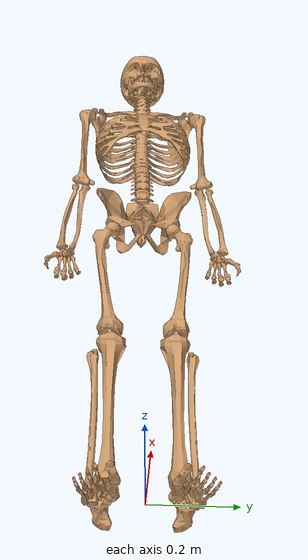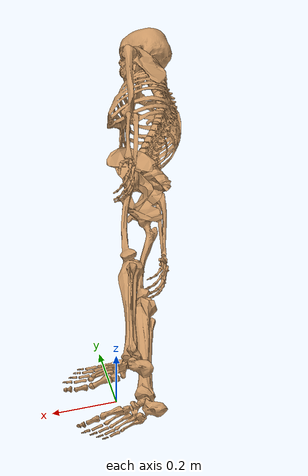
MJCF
<mujoco model="skeleton_restructured">
  <compiler angle="radian" meshdir="meshes" balanceinertia="true" autolimits="true"/>

  <option integrator="implicitfast"/>

  <default>
    <default class="skeleton">
      <material specular="0.5" shininess="0.25"/>
      <joint armature="0.01" damping="0.1" axis="0 0 1" limited="true" stiffness="0.0"/>
      <general dyntype="none" biastype="affine"/>

      <default class="visual">
        <geom type="mesh" contype="0" conaffinity="0" group="2" rgba="0.8 0.6 0.4 1" margin="0.001" condim="1"/>
      </default>
      <default class="collision">
        <geom type="mesh" group="3" margin="0.001" condim="1"/>
      </default>
    </default>
  </default>

  <asset>
    <material class="skeleton" name="bone_color" rgba="0.9 0.85 0.8 1"/>
    <material class="skeleton" name="skin_color" rgba="0.8 0.6 0.4 1"/>

    <!-- All skeleton meshes with original scale values -->
    <mesh name="sacrum" file="sacrum.stl" scale="1.02105 1.02105 1.02105"/>
    <mesh name="pelvis" file="pelvis.stl" scale="1.02105 1.02105 1.02105"/>
    <mesh name="l_pelvis" file="l_pelvis.stl" scale="1.02105 1.02105 1.02105"/>
    <mesh name="femur_r" file="femur_r.stl" scale="0.908907 0.908907 0.908907"/>
    <mesh name="tibia_r" file="tibia_r.stl" scale="1.11668 1.11668 1.11668"/>
    <mesh name="fibula_r" file="fibula_r.stl" scale="1.11668 1.11668 1.11668"/>
    <mesh name="talus_rv" file="talus_rv.stl" scale="1.11668 1.11668 1.11668"/>
    <mesh name="foot" file="foot.stl" scale="1.06552 1.06552 1.06552"/>
    <mesh name="bofoot" file="bofoot.stl" scale="1.06552 1.06552 1.06552"/>
    <mesh name="femur_l" file="femur_l.stl" scale="0.908907 0.908907 0.908907"/>
    <mesh name="tibia_l" file="tibia_l.stl" scale="1.11668 1.11668 1.11668"/>
    <mesh name="fibula_l" file="fibula_l.stl" scale="1.11668 1.11668 1.11668"/>
    <mesh name="talus_lv" file="talus_lv.stl" scale="1.11668 1.11668 1.11668"/>
    <mesh name="l_foot" file="l_foot.stl" scale="1.06552 1.06552 1.06552"/>
    <mesh name="l_bofoot" file="l_bofoot.stl" scale="1.06552 1.06552 1.06552"/>
    <mesh name="hat_spine" file="hat_spine.stl" scale="1.07736 1.07736 1.07736"/>
    <mesh name="hat_jaw" file="hat_jaw.stl" scale="1.07736 1.07736 1.07736"/>
    <mesh name="hat_skull" file="hat_skull.stl" scale="1.07736 1.07736 1.07736"/>
    <mesh name="hat_ribs_scap" file="hat_ribs_scap.stl" scale="1.07736 1.07736 1.07736"/>
    <mesh name="humerus_rv" file="humerus_rv.stl" scale="1.17477 1.17477 1.17477"/>
    <mesh name="ulna_rv" file="ulna_rv.stl" scale="1.10827 1.10827 1.10827"/>
    <mesh name="radius_rv" file="radius_rv.stl" scale="1.10827 1.10827 1.10827"/>
    <mesh name="pisiform_rvs" file="pisiform_rvs.stl" scale="0.905691 0.905691 0.905691"/>
    <mesh name="lunate_rvs" file="lunate_rvs.stl" scale="0.905691 0.905691 0.905691"/>
    <mesh name="scaphoid_rvs" file="scaphoid_rvs.stl" scale="0.905691 0.905691 0.905691"/>
    <mesh name="triquetrum_rvs" file="triquetrum_rvs.stl" scale="0.905691 0.905691 0.905691"/>
    <mesh name="hamate_rvs" file="hamate_rvs.stl" scale="0.905691 0.905691 0.905691"/>
    <mesh name="capitate_rvs" file="capitate_rvs.stl" scale="0.905691 0.905691 0.905691"/>
    <mesh name="trapezoid_rvs" file="trapezoid_rvs.stl" scale="0.905691 0.905691 0.905691"/>
    <mesh name="trapezium_rvs" file="trapezium_rvs.stl" scale="0.905691 0.905691 0.905691"/>
    <mesh name="metacarpal2_rvs" file="metacarpal2_rvs.stl" scale="0.905691 0.905691 0.905691"/>
    <mesh name="index_proximal_rvs" file="index_proximal_rvs.stl" scale="0.905691 0.905691 0.905691"/>
    <mesh name="index_medial_rvs" file="index_medial_rvs.stl" scale="0.905691 0.905691 0.905691"/>
    <mesh name="index_distal_rvs" file="index_distal_rvs.stl" scale="0.905691 0.905691 0.905691"/>
    <mesh name="metacarpal3_rvs" file="metacarpal3_rvs.stl" scale="0.905691 0.905691 0.905691"/>
    <mesh name="middle_proximal_rvs" file="middle_proximal_rvs.stl" scale="0.905691 0.905691 0.905691"/>
    <mesh name="middle_medial_rvs" file="middle_medial_rvs.stl" scale="0.905691 0.905691 0.905691"/>
    <mesh name="middle_distal_rvs" file="middle_distal_rvs.stl" scale="0.905691 0.905691 0.905691"/>
    <mesh name="metacarpal4_rvs" file="metacarpal4_rvs.stl" scale="0.905691 0.905691 0.905691"/>
    <mesh name="ring_proximal_rvs" file="ring_proximal_rvs.stl" scale="0.905691 0.905691 0.905691"/>
    <mesh name="ring_medial_rvs" file="ring_medial_rvs.stl" scale="0.905691 0.905691 0.905691"/>
    <mesh name="ring_distal_rvs" file="ring_distal_rvs.stl" scale="0.905691 0.905691 0.905691"/>
    <mesh name="metacarpal5_rvs" file="metacarpal5_rvs.stl" scale="0.905691 0.905691 0.905691"/>
    <mesh name="little_proximal_rvs" file="little_proximal_rvs.stl" scale="0.905691 0.905691 0.905691"/>
    <mesh name="little_medial_rvs" file="little_medial_rvs.stl" scale="0.905691 0.905691 0.905691"/>
    <mesh name="little_distal_rvs" file="little_distal_rvs.stl" scale="0.905691 0.905691 0.905691"/>
    <mesh name="metacarpal1_rvs" file="metacarpal1_rvs.stl" scale="0.905691 0.905691 0.905691"/>
    <mesh name="thumb_proximal_rvs" file="thumb_proximal_rvs.stl" scale="0.905691 0.905691 0.905691"/>
    <mesh name="thumb_distal_rvs" file="thumb_distal_rvs.stl" scale="0.905691 0.905691 0.905691"/>
    <mesh name="humerus_lv" file="humerus_lv.stl" scale="1.17477 1.17477 1.17477"/>
    <mesh name="ulna_lv" file="ulna_lv.stl" scale="1.10827 1.10827 1.10827"/>
    <mesh name="radius_lv" file="radius_lv.stl" scale="1.10827 1.10827 1.10827"/>
    <mesh name="pisiform_lvs" file="pisiform_lvs.stl" scale="0.905691 0.905691 0.905691"/>
    <mesh name="lunate_lvs" file="lunate_lvs.stl" scale="0.905691 0.905691 0.905691"/>
    <mesh name="scaphoid_lvs" file="scaphoid_lvs.stl" scale="0.905691 0.905691 0.905691"/>
    <mesh name="triquetrum_lvs" file="triquetrum_lvs.stl" scale="0.905691 0.905691 0.905691"/>
    <mesh name="hamate_lvs" file="hamate_lvs.stl" scale="0.905691 0.905691 0.905691"/>
    <mesh name="capitate_lvs" file="capitate_lvs.stl" scale="0.905691 0.905691 0.905691"/>
    <mesh name="trapezoid_lvs" file="trapezoid_lvs.stl" scale="0.905691 0.905691 0.905691"/>
    <mesh name="trapezium_lvs" file="trapezium_lvs.stl" scale="0.905691 0.905691 0.905691"/>
    <mesh name="metacarpal2_lvs" file="metacarpal2_lvs.stl" scale="0.905691 0.905691 0.905691"/>
    <mesh name="index_proximal_lvs" file="index_proximal_lvs.stl" scale="0.905691 0.905691 0.905691"/>
    <mesh name="index_medial_lvs" file="index_medial_lvs.stl" scale="0.905691 0.905691 0.905691"/>
    <mesh name="index_distal_lvs" file="index_distal_lvs.stl" scale="0.905691 0.905691 0.905691"/>
    <mesh name="metacarpal3_lvs" file="metacarpal3_lvs.stl" scale="0.905691 0.905691 0.905691"/>
    <mesh name="middle_proximal_lvs" file="middle_proximal_lvs.stl" scale="0.905691 0.905691 0.905691"/>
    <mesh name="middle_medial_lvs" file="middle_medial_lvs.stl" scale="0.905691 0.905691 0.905691"/>
    <mesh name="middle_distal_lvs" file="middle_distal_lvs.stl" scale="0.905691 0.905691 0.905691"/>
    <mesh name="metacarpal4_lvs" file="metacarpal4_lvs.stl" scale="0.905691 0.905691 0.905691"/>
    <mesh name="ring_proximal_lvs" file="ring_proximal_lvs.stl" scale="0.905691 0.905691 0.905691"/>
    <mesh name="ring_medial_lvs" file="ring_medial_lvs.stl" scale="0.905691 0.905691 0.905691"/>
    <mesh name="ring_distal_lvs" file="ring_distal_lvs.stl" scale="0.905691 0.905691 0.905691"/>
    <mesh name="metacarpal5_lvs" file="metacarpal5_lvs.stl" scale="0.905691 0.905691 0.905691"/>
    <mesh name="little_proximal_lvs" file="little_proximal_lvs.stl" scale="0.905691 0.905691 0.905691"/>
    <mesh name="little_medial_lvs" file="little_medial_lvs.stl" scale="0.905691 0.905691 0.905691"/>
    <mesh name="little_distal_lvs" file="little_distal_lvs.stl" scale="0.905691 0.905691 0.905691"/>
    <mesh name="metacarpal1_lvs" file="metacarpal1_lvs.stl" scale="0.905691 0.905691 0.905691"/>
    <mesh name="thumb_proximal_lvs" file="thumb_proximal_lvs.stl" scale="0.905691 0.905691 0.905691"/>
    <mesh name="thumb_distal_lvs" file="thumb_distal_lvs.stl" scale="0.905691 0.905691 0.905691"/>
  </asset>

  <worldbody>
    <!-- Pelvis - Root body -->
    <body name="pelvis" pos="0 6.73556e-17 0.975" quat="0.7071067811865475 0.7071067811865475 0.0 0.0">
      <geom class="visual" name="sacrum_vis" mesh="sacrum" material="skin_color"/>
      <geom class="visual" name="pelvis_vis" mesh="pelvis" material="skin_color"/>
      <geom class="visual" name="l_pelvis_vis" mesh="l_pelvis" material="skin_color"/>
      <geom class="collision" name="sacrum_col" mesh="sacrum"/>
      <geom class="collision" name="pelvis_col" mesh="pelvis"/>
      <geom class="collision" name="l_pelvis_col" mesh="l_pelvis"/>

      <inertial pos="-0.0721882 0 0" mass="13.5729922649758"
                fullinertia="0.123517 0.104653 0.0695686 0 0 0"/>

      <freejoint name="root"/>

      <!-- RIGHT LEG - Restructured with intermediate bodies -->
      <body name="hip_flex_r" pos="-0.0721882 -0.0674914 0.0852576" quat="1.0 0.0 0.0 0.0">
        <inertial pos="0 0 0" mass="0.001" fullinertia="1e-6 1e-6 1e-6 0 0 0"/>
        <joint name="hip_flexion_r" damping="5" stiffness="10" type="hinge" pos="0 0 0"
               axis="0 0 1" limited="true" range="-0.787 0.787" ref="0"/>

        <body name="hip_add_r" pos="0 0 0" quat="1.0 0.0 0.0 0.0">
          <inertial pos="0 0 0" mass="0.001" fullinertia="1e-6 1e-6 1e-6 0 0 0"/>
          <joint name="hip_adduction_r" damping="5" stiffness="10" type="hinge" pos="0 0 0"
                 axis="1 0 0" limited="true" range="-0.524 0.524" ref="0"/>

          <body name="hip_rot_r" pos="0 0 0" quat="1.0 0.0 0.0 0.0">
            <inertial pos="0 0 0" mass="0.001" fullinertia="1e-6 1e-6 1e-6 0 0 0"/>
            <joint name="hip_rotation_r" damping="5" stiffness="20" type="hinge" pos="0 0 0"
                   axis="0 1 0" limited="true" range="-2.0944 2.0944" ref="0"/>

            <body name="femur_r" pos="0 0 0" quat="1.0 0.0 0.0 0.0">
              <geom class="visual" name="femur_r_vis" mesh="femur_r" material="skin_color"/>
              <geom class="collision" name="femur_r_col" mesh="femur_r"/>
              <inertial pos="0 -0.154514 0" mass="10.7198633143794"
                        fullinertia="0.127486 0.0334185 0.134436 0 0 0"/>

              <body name="tibia_r" pos="-0.00167398 -0.365545 0" quat="1.0 0.0 0.0 0.0">
                <geom class="visual" name="tibia_r_vis" mesh="tibia_r" material="skin_color"/>
                <geom class="visual" name="fibula_r_vis" mesh="fibula_r" material="skin_color"/>
                <geom class="collision" name="tibia_r_col" mesh="tibia_r"/>
                <geom class="collision" name="fibula_r_col" mesh="fibula_r"/>
                <inertial pos="0 -0.208485 0" mass="4.27289367601238"
                          fullinertia="0.072432 0.00732943 0.073438 0 0 0"/>

                <joint name="knee_angle_r" type="hinge" pos="0 0 0" axis="0 0 1"
                       limited="true" range="-2.0944 0.174533" ref="0"/>

                <body name="talus_r" pos="0 -0.480173 0" quat="1.0 0.0 0.0 0.0">
                  <geom class="visual" name="talus_rv_vis" mesh="talus_rv" material="skin_color"/>
                  <geom class="collision" name="talus_rv_col" mesh="talus_rv"/>
                  <inertial pos="0 0 0" mass="0.11524999800438"
                            fullinertia="0.00143714 0.00143714 0.00143714 0 0 0"/>

                  <joint name="ankle_angle_r" stiffness="10" damping="1" type="hinge" pos="0 0 0"
                         axis="-0.105014 -0.174022 0.979126" limited="true" range="-1.5708 1.5708" ref="0"/>

                  <body name="calcn_r" pos="-0.0544606 -0.0468448 0.00884412" quat="1.0 0.0 0.0 0.0">
                    <geom class="visual" name="r_foot_vis" mesh="foot" material="skin_color" condim="3"/>
                    <geom class="collision" name="r_foot_col" mesh="foot" condim="3"/>
                    <inertial pos="0.106552 0.0319656 0" mass="1.44062497505475"
                              fullinertia="0.00183186 0.00510303 0.00536472 0 0 0"/>

                    <joint name="subtalar_angle_r" armature="0.01" type="hinge" pos="0 0 0"
                           axis="0.78718 0.604747 -0.120949" limited="true" range="-1.5708 1.5708" ref="0"/>

                    <body name="toes_r" pos="0.190515 -0.00213104 0.00115076" quat="1.0 0.0 0.0 0.0">
                      <geom class="visual" name="r_bofoot_vis" mesh="bofoot" material="skin_color" condim="3"/>
                      <geom class="collision" name="r_bofoot_col" mesh="bofoot" condim="3"/>
                      <inertial pos="0.036867 0.00639311 -0.0186466" mass="0.249631495677486"
                                fullinertia="0.000130847 0.000261694 0.00130847 0 0 0"/>

                      <joint name="mtp_angle_r" armature="0.01" type="hinge" pos="0 0 0"
                             axis="-0.580954 0 0.813936" limited="true" range="-1.5708 1.5708" ref="0"/>
                    </body>
                  </body>
                </body>
              </body>
            </body>
          </body>
        </body>
      </body>

      <!-- LEFT LEG - Restructured with intermediate bodies -->
      <body name="hip_flex_l" pos="-0.0721882 -0.0674914 -0.0852576" quat="1.0 0.0 0.0 0.0">
        <inertial pos="0 0 0" mass="0.001" fullinertia="1e-6 1e-6 1e-6 0 0 0"/>
        <joint name="hip_flexion_l" damping="5" stiffness="10" type="hinge" pos="0 0 0"
               axis="0 0 1" limited="true" range="-0.787 0.787" ref="0"/>

        <body name="hip_add_l" pos="0 0 0" quat="1.0 0.0 0.0 0.0">
          <inertial pos="0 0 0" mass="0.001" fullinertia="1e-6 1e-6 1e-6 0 0 0"/>
          <joint name="hip_adduction_l" damping="5" stiffness="10" type="hinge" pos="0 0 0"
                 axis="-1 0 0" limited="true" range="-0.524 0.524" ref="0"/>

          <body name="hip_rot_l" pos="0 0 0" quat="1.0 0.0 0.0 0.0">
            <inertial pos="0 0 0" mass="0.001" fullinertia="1e-6 1e-6 1e-6 0 0 0"/>
            <joint name="hip_rotation_l" damping="5" stiffness="20" type="hinge" pos="0 0 0"
                   axis="0 -1 0" limited="true" range="-2.0944 2.0944" ref="0"/>

            <body name="femur_l" pos="0 0 0" quat="1.0 0.0 0.0 0.0">
              <geom class="visual" name="femur_l_vis" mesh="femur_l" material="skin_color"/>
              <geom class="collision" name="femur_l_col" mesh="femur_l"/>
              <inertial pos="0 -0.154514 0" mass="10.7198633143794"
                        fullinertia="0.127486 0.0334185 0.134436 0 0 0"/>

              <body name="tibia_l" pos="-0.00167398 -0.365545 0" quat="1.0 0.0 0.0 0.0">
                <geom class="visual" name="tibia_l_vis" mesh="tibia_l" material="skin_color"/>
                <geom class="visual" name="fibula_l_vis" mesh="fibula_l" material="skin_color"/>
                <geom class="collision" name="tibia_l_col" mesh="tibia_l"/>
                <geom class="collision" name="fibula_l_col" mesh="fibula_l"/>
                <inertial pos="0 -0.208485 0" mass="4.27289367601238"
                          fullinertia="0.072432 0.00732943 0.073438 0 0 0"/>

                <joint name="knee_angle_l" type="hinge" pos="0 0 0" axis="0 0 1"
                       limited="true" range="-2.0944 0.174533" ref="0"/>

                <body name="talus_l" pos="0 -0.480173 0" quat="1.0 0.0 0.0 0.0">
                  <geom class="visual" name="talus_lv_vis" mesh="talus_lv" material="skin_color"/>
                  <geom class="collision" name="talus_lv_col" mesh="talus_lv"/>
                  <inertial pos="0 0 0" mass="0.11524999800438"
                            fullinertia="0.00143714 0.00143714 0.00143714 0 0 0"/>

                  <joint name="ankle_angle_l" stiffness="10" damping="1" type="hinge" pos="0 0 0"
                         axis="0.105014 0.174022 0.979126" limited="true" range="-1.0472 1.0472" ref="0"/>

                  <body name="calcn_l" pos="-0.0544606 -0.0468448 -0.00884412" quat="1.0 0.0 0.0 0.0">
                    <geom class="visual" name="l_foot_vis" mesh="l_foot" material="skin_color" condim="3"/>
                    <geom class="collision" name="l_foot_col" mesh="l_foot" condim="3"/>
                    <inertial pos="0.106552 0.0319656 0" mass="1.44062497505475"
                              fullinertia="0.00183186 0.00510303 0.00536472 0 0 0"/>

                    <joint name="subtalar_angle_l" armature="0.01" type="hinge" pos="0 0 0"
                           axis="-0.78718 -0.604747 -0.120949" limited="true" range="-1.5708 1.5708" ref="0"/>

                    <body name="toes_l" pos="0.190515 -0.00213104 -0.00115076" quat="1.0 0.0 0.0 0.0">
                      <geom class="visual" name="l_bofoot_vis" mesh="l_bofoot" material="skin_color" condim="3"/>
                      <geom class="collision" name="l_bofoot_col" mesh="l_bofoot" condim="3"/>
                      <inertial pos="0.036867 0.00639311 0.0186466" mass="0.249631495677486"
                                fullinertia="0.000130847 0.000261694 0.00130847 0 0 0"/>

                      <joint name="mtp_angle_l" armature="0.01" type="hinge" pos="0 0 0"
                             axis="0.580954 0 0.813936" limited="true" range="-1.0472 1.0472" ref="0"/>
                    </body>
                  </body>
                </body>
              </body>
            </body>
          </body>
        </body>
      </body>

      <!-- TORSO - Restructured with intermediate bodies -->
      <body name="lumbar_ext" pos="-0.10282 0.0832155 0" quat="1.0 0.0 0.0 0.0">
        <inertial pos="0 0 0" mass="0.001" fullinertia="1e-6 1e-6 1e-6 0 0 0"/>
        <joint name="lumbar_extension" stiffness="10" damping="5" type="hinge" pos="0 0 0"
               axis="0 0 1" limited="true" range="-1.5708 0.377" ref="0"/>

        <body name="lumbar_bend" pos="0 0 0" quat="1.0 0.0 0.0 0.0">
          <inertial pos="0 0 0" mass="0.001" fullinertia="1e-6 1e-6 1e-6 0 0 0"/>
          <joint name="lumbar_bending" stiffness="10" damping="5" type="hinge" pos="0 0 0"
                 axis="1 0 0" limited="true" range="-0.754 0.754" ref="0"/>

          <body name="lumbar_rot" pos="0 0 0" quat="1.0 0.0 0.0 0.0">
            <inertial pos="0 0 0" mass="0.001" fullinertia="1e-6 1e-6 1e-6 0 0 0"/>
            <joint name="lumbar_rotation" stiffness="20" damping="5" type="hinge" pos="0 0 0"
                   axis="0 1 0" limited="true" range="-0.754 0.754" ref="0"/>

            <body name="torso" pos="0 0 0" quat="1.0 0.0 0.0 0.0">
              <geom class="visual" name="hat_spine_vis" mesh="hat_spine" material="skin_color"/>
              <geom class="visual" name="hat_jaw_vis" mesh="hat_jaw" material="skin_color"/>
              <geom class="visual" name="hat_skull_vis" mesh="hat_skull" material="skin_color"/>
              <geom class="visual" name="hat_ribs_scap_vis" mesh="hat_ribs_scap" material="skin_color"/>
              <geom class="collision" name="hat_spine_col" mesh="hat_spine"/>
              <geom class="collision" name="hat_jaw_col" mesh="hat_jaw"/>
              <geom class="collision" name="hat_skull_col" mesh="hat_skull"/>
              <geom class="collision" name="hat_ribs_scap_col" mesh="hat_ribs_scap"/>
              <inertial pos="-0.0323208 0.344755 0" mass="30.9176559646429"
                        fullinertia="1.97246 1.01064 1.9148 0 0 0"/>

              <!-- RIGHT ARM - Restructured -->
              <body name="arm_flex_r" pos="0.00339907 0.400239 0.183151" quat="1.0 0.0 0.0 0.0">
                <inertial pos="0 0 0" mass="0.001" fullinertia="1e-6 1e-6 1e-6 0 0 0"/>
                <joint name="arm_flex_r" damping="1.0" stiffness="1.0" type="hinge" pos="0 0 0" axis="0 0 1"
                       limited="true" range="-1.5708 1.5708" ref="0"/>

                <body name="arm_add_r" pos="0 0 0" quat="1.0 0.0 0.0 0.0">
                  <inertial pos="0 0 0" mass="0.001" fullinertia="1e-6 1e-6 1e-6 0 0 0"/>
                  <joint name="arm_add_r" damping="1.0" stiffness="1.0" type="hinge" pos="0 0 0" axis="1 0 0"
                         limited="true" range="-2.0944 1.5708" ref="0"/>

                  <body name="arm_rot_r" pos="0 0 0" quat="1.0 0.0 0.0 0.0">
                    <inertial pos="0 0 0" mass="0.001" fullinertia="1e-6 1e-6 1e-6 0 0 0"/>
                    <joint name="arm_rot_r" damping="1.0" stiffness="1.0" type="hinge" pos="0 0 0" axis="0 1 0"
                           limited="true" range="-1.5708 1.5708" ref="0"/>

                    <body name="humerus_r" pos="0 0 0" quat="1.0 0.0 0.0 0.0">
                      <geom class="visual" name="humerus_rv_vis" mesh="humerus_rv" material="skin_color"/>
                      <geom class="collision" name="humerus_rv_col" mesh="humerus_rv"/>
                      <inertial pos="0 -0.193252 0" mass="2.34245620943902"
                                fullinertia="0.0190007 0.00655464 0.0213276 0 0 0"/>

                      <body name="ulna_r" pos="0.0154412 -0.336305 -0.0112719" quat="1.0 0.0 0.0 0.0">
                        <geom class="visual" name="ulna_rv_vis" mesh="ulna_rv" material="skin_color"/>
                        <geom class="collision" name="ulna_rv_col" mesh="ulna_rv"/>
                        <inertial pos="0 -0.133575 0" mass="0.700143737876607"
                                  fullinertia="0.00419295 0.000874829 0.00454826 0 0 0"/>

                        <joint name="elbow_flex_r" stiffness="0" damping="1.0" type="hinge" pos="0 0 0"
                               axis="0.226047 0.022269 0.973862" limited="true" range="-0.3 2.618" ref="0"/>

                        <body name="radius_r" pos="-0.00745535 -0.0144153 0.0289071" quat="1.0 0.0 0.0 0.0">
                          <geom class="visual" name="radius_rv_vis" mesh="radius_rv" material="skin_color"/>
                          <geom class="collision" name="radius_rv_col" mesh="radius_rv"/>
                          <inertial pos="0 -0.133575 0" mass="0.700143737876607"
                                    fullinertia="0.00419295 0.000874829 0.00454826 0 0 0"/>

                          <joint name="pro_sup_r" stiffness="0" damping="1.0" type="hinge" pos="0 0 0"
                                 axis="0.056398 0.998406 0.001952" limited="true" range="-0.6 1.5708" ref="0"/>

                          <body name="wrist_flex_r" pos="-0.00974948 -0.261376 0.0150836" quat="1.0 0.0 0.0 0.0">
                            <inertial pos="0 0 0" mass="0.001" fullinertia="1e-6 1e-6 1e-6 0 0 0"/>
                            <joint name="wrist_flex_r" stiffness="0" damping="1.0" type="hinge" pos="0 0 0" axis="0 0 1"
                                   limited="true" range="-1.22173 1.22173" ref="0"/>

                            <body name="wrist_dev_r" pos="0 0 0" quat="1.0 0.0 0.0 0.0">
                              <inertial pos="0 0 0" mass="0.001" fullinertia="1e-6 1e-6 1e-6 0 0 0"/>
                              <joint name="wrist_dev_r" stiffness="0" damping="1.0" type="hinge" pos="0 0 0" axis="1 0 0"
                                     limited="true" range="-0.436332 0.610865" ref="0"/>

                              <body name="hand_r" pos="0 0 0" quat="1.0 0.0 0.0 0.0">
                                <geom class="visual" name="pisiform_rvs_vis" mesh="pisiform_rvs" material="skin_color"/>
                                <geom class="visual" name="lunate_rvs_vis" mesh="lunate_rvs" material="skin_color"/>
                                <geom class="visual" name="scaphoid_rvs_vis" mesh="scaphoid_rvs" material="skin_color"/>
                                <geom class="visual" name="triquetrum_rvs_vis" mesh="triquetrum_rvs" material="skin_color"/>
                                <geom class="visual" name="hamate_rvs_vis" mesh="hamate_rvs" material="skin_color"/>
                                <geom class="visual" name="capitate_rvs_vis" mesh="capitate_rvs" material="skin_color"/>
                                <geom class="visual" name="trapezoid_rvs_vis" mesh="trapezoid_rvs" material="skin_color"/>
                                <geom class="visual" name="trapezium_rvs_vis" mesh="trapezium_rvs" material="skin_color"/>
                                <geom class="visual" name="metacarpal2_rvs_vis" mesh="metacarpal2_rvs" material="skin_color"/>
                                <geom class="visual" name="index_proximal_rvs_vis" mesh="index_proximal_rvs" material="skin_color"/>
                                <geom class="visual" name="index_medial_rvs_vis" mesh="index_medial_rvs" material="skin_color"/>
                                <geom class="visual" name="index_distal_rvs_vis" mesh="index_distal_rvs" material="skin_color"/>
                                <geom class="visual" name="metacarpal3_rvs_vis" mesh="metacarpal3_rvs" material="skin_color"/>
                                <geom class="visual" name="middle_proximal_rvs_vis" mesh="middle_proximal_rvs" material="skin_color"/>
                                <geom class="visual" name="middle_medial_rvs_vis" mesh="middle_medial_rvs" material="skin_color"/>
                                <geom class="visual" name="middle_distal_rvs_vis" mesh="middle_distal_rvs" material="skin_color"/>
                                <geom class="visual" name="metacarpal4_rvs_vis" mesh="metacarpal4_rvs" material="skin_color"/>
                                <geom class="visual" name="ring_proximal_rvs_vis" mesh="ring_proximal_rvs" material="skin_color"/>
                                <geom class="visual" name="ring_medial_rvs_vis" mesh="ring_medial_rvs" material="skin_color"/>
                                <geom class="visual" name="ring_distal_rvs_vis" mesh="ring_distal_rvs" material="skin_color"/>
                                <geom class="visual" name="metacarpal5_rvs_vis" mesh="metacarpal5_rvs" material="skin_color"/>
                                <geom class="visual" name="little_proximal_rvs_vis" mesh="little_proximal_rvs" material="skin_color"/>
                                <geom class="visual" name="little_medial_rvs_vis" mesh="little_medial_rvs" material="skin_color"/>
                                <geom class="visual" name="little_distal_rvs_vis" mesh="little_distal_rvs" material="skin_color"/>
                                <geom class="visual" name="metacarpal1_rvs_vis" mesh="metacarpal1_rvs" material="skin_color"/>
                                <geom class="visual" name="thumb_proximal_rvs_vis" mesh="thumb_proximal_rvs" material="skin_color"/>
                                <geom class="visual" name="thumb_distal_rvs_vis" mesh="thumb_distal_rvs" material="skin_color"/>
                                <geom class="collision" name="hand_r_col" mesh="pisiform_rvs"/>
                                <inertial pos="0 -0.0725565 0" mass="0.527268740870037"
                                          fullinertia="0.00116715 0.000715732 0.00175335 0 0 0"/>
                              </body>
                            </body>
                          </body>
                        </body>
                      </body>
                    </body>
                  </body>
                </body>
              </body>

              <!-- LEFT ARM - Restructured -->
              <body name="arm_flex_l" pos="0.00339907 0.400239 -0.183151" quat="1.0 0.0 0.0 0.0">
                <inertial pos="0 0 0" mass="0.001" fullinertia="1e-6 1e-6 1e-6 0 0 0"/>
                <joint name="arm_flex_l" damping="1.0" stiffness="1.0" type="hinge" pos="0 0 0" axis="0 0 1"
                       limited="true" range="-1.5708 1.5708" ref="0"/>

                <body name="arm_add_l" pos="0 0 0" quat="1.0 0.0 0.0 0.0">
                  <inertial pos="0 0 0" mass="0.001" fullinertia="1e-6 1e-6 1e-6 0 0 0"/>
                  <joint name="arm_add_l" damping="1.0" stiffness="1.0" type="hinge" pos="0 0 0" axis="-1 0 0"
                         limited="true" range="-2.0944 1.5708" ref="0"/>

                  <body name="arm_rot_l" pos="0 0 0" quat="1.0 0.0 0.0 0.0">
                    <inertial pos="0 0 0" mass="0.001" fullinertia="1e-6 1e-6 1e-6 0 0 0"/>
                    <joint name="arm_rot_l" damping="1.0" stiffness="1.0" type="hinge" pos="0 0 0" axis="0 -1 0"
                           limited="true" range="-1.5708 1.5708" ref="0"/>

                    <body name="humerus_l" pos="0 0 0" quat="1.0 0.0 0.0 0.0">
                      <geom class="visual" name="humerus_lv_vis" mesh="humerus_lv" material="skin_color"/>
                      <geom class="collision" name="humerus_lv_col" mesh="humerus_lv"/>
                      <inertial pos="0 -0.193252 0" mass="2.34245620943902"
                                fullinertia="0.0190007 0.00655464 0.0213276 0 0 0"/>

                      <body name="ulna_l" pos="0.0154412 -0.336305 0.0112719" quat="1.0 0.0 0.0 0.0">
                        <geom class="visual" name="ulna_lv_vis" mesh="ulna_lv" material="skin_color"/>
                        <geom class="collision" name="ulna_lv_col" mesh="ulna_lv"/>
                        <inertial pos="0 -0.133575 0" mass="0.700143737876607"
                                  fullinertia="0.00419295 0.000874829 0.00454826 0 0 0"/>

                        <joint name="elbow_flex_l" stiffness="0" damping="1.0" type="hinge" pos="0 0 0"
                               axis="-0.226047 -0.022269 0.973862" limited="true" range="-0.3 2.618" ref="0"/>

                        <body name="radius_l" pos="-0.00745535 -0.0144153 -0.0289071" quat="1.0 0.0 0.0 0.0">
                          <geom class="visual" name="radius_lv_vis" mesh="radius_lv" material="skin_color"/>
                          <geom class="collision" name="radius_lv_col" mesh="radius_lv"/>
                          <inertial pos="0 -0.133575 0" mass="0.700143737876607"
                                    fullinertia="0.00419295 0.000874829 0.00454826 0 0 0"/>

                          <joint name="pro_sup_l" stiffness="0" damping="1.0" type="hinge" pos="0 0 0"
                                 axis="-0.056398 -0.998406 0.001952" limited="true" range="-0.60 1.5708" ref="0"/>

                          <body name="wrist_flex_l" pos="-0.00974948 -0.261376 -0.0150836" quat="1.0 0.0 0.0 0.0">
                            <inertial pos="0 0 0" mass="0.001" fullinertia="1e-6 1e-6 1e-6 0 0 0"/>
                            <joint name="wrist_flex_l" stiffness="0" damping="1.0" type="hinge" pos="0 0 0" axis="0 0 1"
                                   limited="true" range="-1.22173 1.22173" ref="0"/>

                            <body name="wrist_dev_l" pos="0 0 0" quat="1.0 0.0 0.0 0.0">
                              <inertial pos="0 0 0" mass="0.001" fullinertia="1e-6 1e-6 1e-6 0 0 0"/>
                              <joint name="wrist_dev_l" stiffness="0" damping="1.0" type="hinge" pos="0 0 0" axis="-1 0 0"
                                     limited="true" range="-0.436332 0.610865" ref="0"/>

                              <body name="hand_l" pos="0 0 0" quat="1.0 0.0 0.0 0.0">
                                <geom class="visual" name="pisiform_lvs_vis" mesh="pisiform_lvs" material="skin_color"/>
                                <geom class="visual" name="lunate_lvs_vis" mesh="lunate_lvs" material="skin_color"/>
                                <geom class="visual" name="scaphoid_lvs_vis" mesh="scaphoid_lvs" material="skin_color"/>
                                <geom class="visual" name="triquetrum_lvs_vis" mesh="triquetrum_lvs" material="skin_color"/>
                                <geom class="visual" name="hamate_lvs_vis" mesh="hamate_lvs" material="skin_color"/>
                                <geom class="visual" name="capitate_lvs_vis" mesh="capitate_lvs" material="skin_color"/>
                                <geom class="visual" name="trapezoid_lvs_vis" mesh="trapezoid_lvs" material="skin_color"/>
                                <geom class="visual" name="trapezium_lvs_vis" mesh="trapezium_lvs" material="skin_color"/>
                                <geom class="visual" name="metacarpal2_lvs_vis" mesh="metacarpal2_lvs" material="skin_color"/>
                                <geom class="visual" name="index_proximal_lvs_vis" mesh="index_proximal_lvs" material="skin_color"/>
                                <geom class="visual" name="index_medial_lvs_vis" mesh="index_medial_lvs" material="skin_color"/>
                                <geom class="visual" name="index_distal_lvs_vis" mesh="index_distal_lvs" material="skin_color"/>
                                <geom class="visual" name="metacarpal3_lvs_vis" mesh="metacarpal3_lvs" material="skin_color"/>
                                <geom class="visual" name="middle_proximal_lvs_vis" mesh="middle_proximal_lvs" material="skin_color"/>
                                <geom class="visual" name="middle_medial_lvs_vis" mesh="middle_medial_lvs" material="skin_color"/>
                                <geom class="visual" name="middle_distal_lvs_vis" mesh="middle_distal_lvs" material="skin_color"/>
                                <geom class="visual" name="metacarpal4_lvs_vis" mesh="metacarpal4_lvs" material="skin_color"/>
                                <geom class="visual" name="ring_proximal_lvs_vis" mesh="ring_proximal_lvs" material="skin_color"/>
                                <geom class="visual" name="ring_medial_lvs_vis" mesh="ring_medial_lvs" material="skin_color"/>
                                <geom class="visual" name="ring_distal_lvs_vis" mesh="ring_distal_lvs" material="skin_color"/>
                                <geom class="visual" name="metacarpal5_lvs_vis" mesh="metacarpal5_lvs" material="skin_color"/>
                                <geom class="visual" name="little_proximal_lvs_vis" mesh="little_proximal_lvs" material="skin_color"/>
                                <geom class="visual" name="little_medial_lvs_vis" mesh="little_medial_lvs" material="skin_color"/>
                                <geom class="visual" name="little_distal_lvs_vis" mesh="little_distal_lvs" material="skin_color"/>
                                <geom class="visual" name="metacarpal1_lvs_vis" mesh="metacarpal1_lvs" material="skin_color"/>
                                <geom class="visual" name="thumb_proximal_lvs_vis" mesh="thumb_proximal_lvs" material="skin_color"/>
                                <geom class="visual" name="thumb_distal_lvs_vis" mesh="thumb_distal_lvs" material="skin_color"/>
                                <geom class="collision" name="hand_l_col" mesh="pisiform_lvs"/>
                                <inertial pos="0 -0.0725565 0" mass="0.527268740870037"
                                          fullinertia="0.00116715 0.000715732 0.00175335 0 0 0"/>
                              </body>
                            </body>
                          </body>
                        </body>
                      </body>
                    </body>
                  </body>
                </body>
              </body>
            </body>
          </body>
        </body>
      </body>
    </body>
  </worldbody>

  <!-- Complete actuator set -->
  <actuator>
    <motor ctrllimited="true" ctrlrange="-1.0 1.0" name="mot_lumbar_ext" gear="160" joint="lumbar_extension"/>
    <motor ctrllimited="true" ctrlrange="-1.0 1.0" name="mot_lumbar_bend" gear="160" joint="lumbar_bending"/>
    <motor ctrllimited="true" ctrlrange="-1.0 1.0" name="mot_lumbar_rot" gear="100" joint="lumbar_rotation"/>
    <motor ctrllimited="true" ctrlrange="-1.0 1.0" name="mot_shoulder_flex_r" gear="250" joint="arm_flex_r"/>
    <motor ctrllimited="true" ctrlrange="-1.0 1.0" name="mot_shoulder_add_r" gear="250" joint="arm_add_r"/>
    <motor ctrllimited="true" ctrlrange="-1.0 1.0" name="mot_shoulder_rot_r" gear="250" joint="arm_rot_r"/>
    <motor ctrllimited="true" ctrlrange="-1.0 1.0" name="mot_elbow_flex_r" gear="250" joint="elbow_flex_r"/>
    <motor ctrllimited="true" ctrlrange="-1.0 1.0" name="mot_pro_sup_r" gear="250" joint="pro_sup_r"/>
    <motor ctrllimited="true" ctrlrange="-1.0 1.0" name="mot_wrist_flex_r" gear="50" joint="wrist_flex_r"/>
    <motor ctrllimited="true" ctrlrange="-1.0 1.0" name="mot_wrist_dev_r" gear="50" joint="wrist_dev_r"/>
    <motor ctrllimited="true" ctrlrange="-1.0 1.0" name="mot_shoulder_flex_l" gear="250" joint="arm_flex_l"/>
    <motor ctrllimited="true" ctrlrange="-1.0 1.0" name="mot_shoulder_add_l" gear="250" joint="arm_add_l"/>
    <motor ctrllimited="true" ctrlrange="-1.0 1.0" name="mot_shoulder_rot_l" gear="250" joint="arm_rot_l"/>
    <motor ctrllimited="true" ctrlrange="-1.0 1.0" name="mot_elbow_flex_l" gear="250" joint="elbow_flex_l"/>
    <motor ctrllimited="true" ctrlrange="-1.0 1.0" name="mot_pro_sup_l" gear="250" joint="pro_sup_l"/>
    <motor ctrllimited="true" ctrlrange="-1.0 1.0" name="mot_wrist_flex_l" gear="50" joint="wrist_flex_l"/>
    <motor ctrllimited="true" ctrlrange="-1.0 1.0" name="mot_wrist_dev_l" gear="50" joint="wrist_dev_l"/>
    <motor ctrllimited="true" ctrlrange="-1.0 1.0" name="mot_hip_flexion_r" gear="275" joint="hip_flexion_r"/>
    <motor ctrllimited="true" ctrlrange="-1.0 1.0" name="mot_hip_adduction_r" gear="530" joint="hip_adduction_r"/>
    <motor ctrllimited="true" ctrlrange="-1.0 1.0" name="mot_hip_rotation_r" gear="600" joint="hip_rotation_r"/>
    <motor ctrllimited="true" ctrlrange="-1.0 1.0" name="mot_knee_angle_r" gear="600" joint="knee_angle_r"/>
    <motor ctrllimited="true" ctrlrange="-1.0 1.0" name="mot_ankle_angle_r" gear="500" joint="ankle_angle_r"/>
    <motor ctrllimited="true" ctrlrange="-1.0 1.0" name="mot_subtalar_angle_r" gear="50" joint="subtalar_angle_r"/>
    <motor ctrllimited="true" ctrlrange="-1.0 1.0" name="mot_mtp_angle_r" gear="50" joint="mtp_angle_r"/>
    <motor ctrllimited="true" ctrlrange="-1.0 1.0" name="mot_hip_flexion_l" gear="275" joint="hip_flexion_l"/>
    <motor ctrllimited="true" ctrlrange="-1.0 1.0" name="mot_hip_adduction_l" gear="530" joint="hip_adduction_l"/>
    <motor ctrllimited="true" ctrlrange="-1.0 1.0" name="mot_hip_rotation_l" gear="600" joint="hip_rotation_l"/>
    <motor ctrllimited="true" ctrlrange="-1.0 1.0" name="mot_knee_angle_l" gear="600" joint="knee_angle_l"/>
    <motor ctrllimited="true" ctrlrange="-1.0 1.0" name="mot_ankle_angle_l" gear="500" joint="ankle_angle_l"/>
    <motor ctrllimited="true" ctrlrange="-1.0 1.0" name="mot_subtalar_angle_l" gear="50" joint="subtalar_angle_l"/>
    <motor ctrllimited="true" ctrlrange="-1.0 1.0" name="mot_mtp_angle_l" gear="50" joint="mtp_angle_l"/>
  </actuator>

</mujoco>
